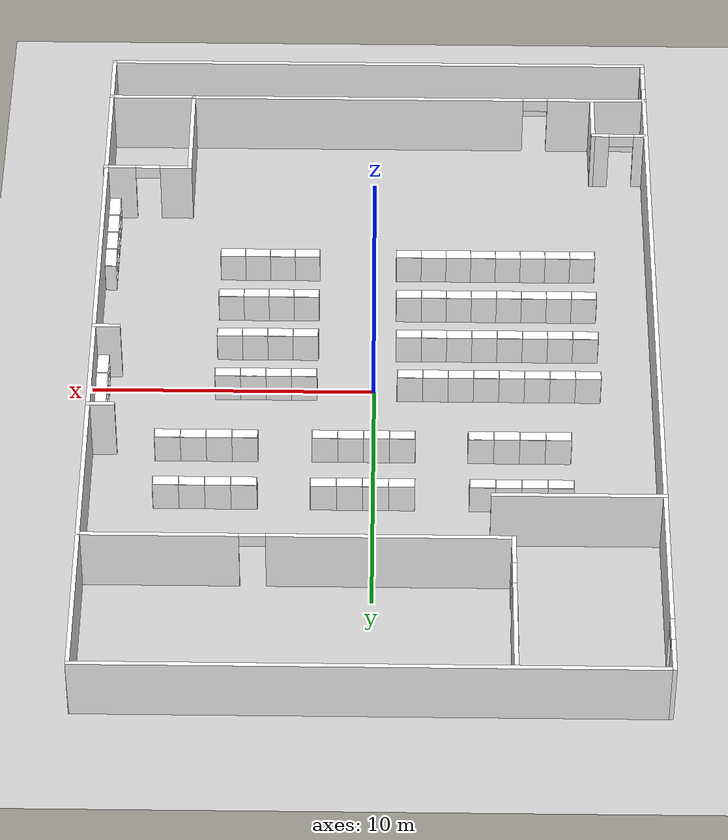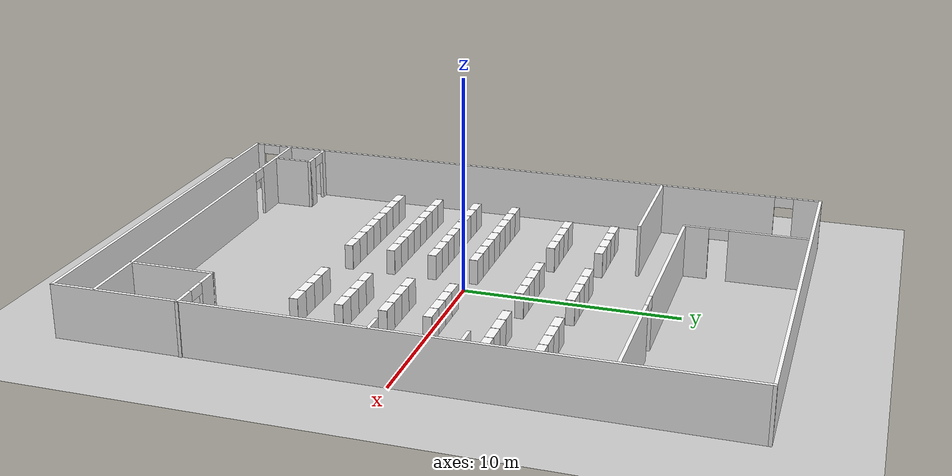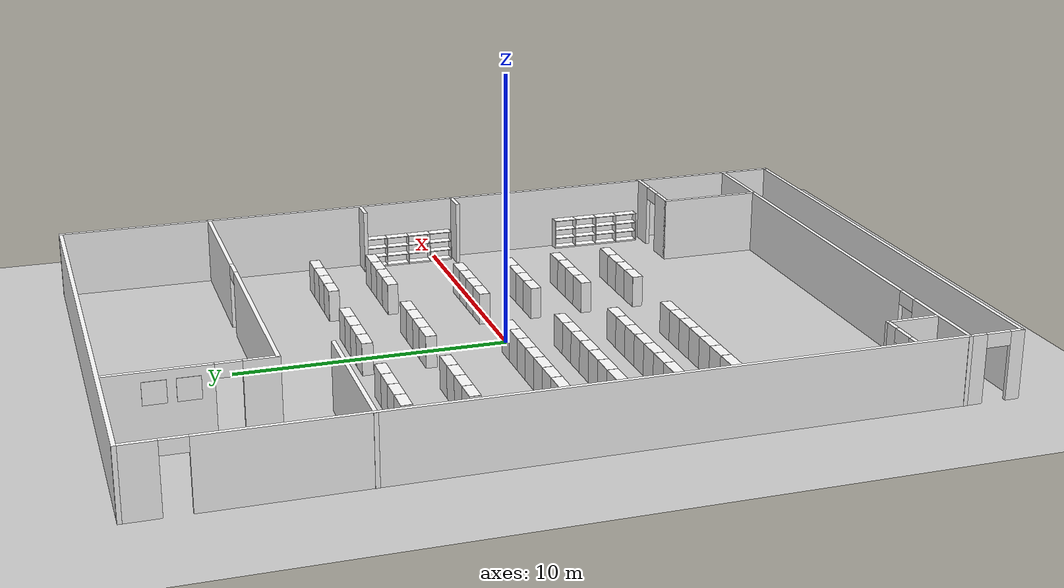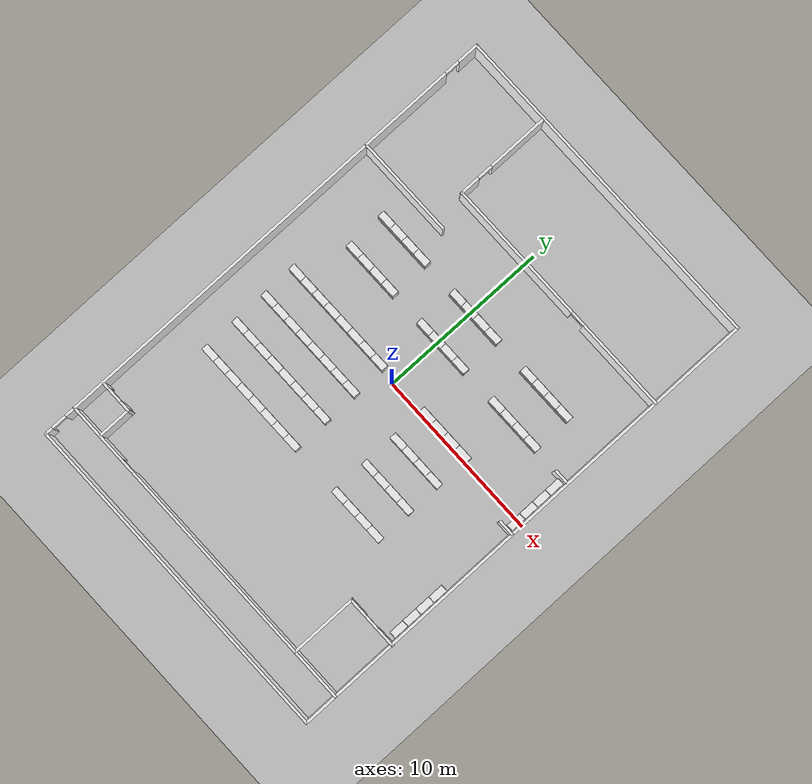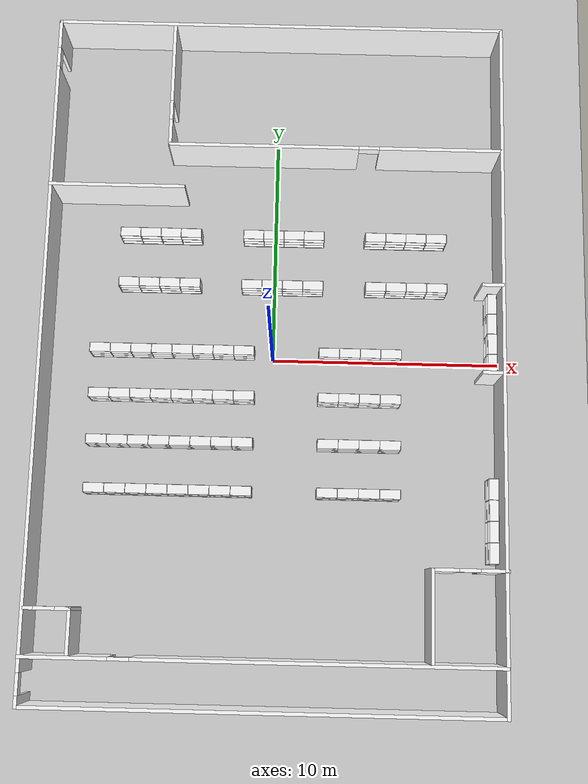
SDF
<sdf version="1.10">
 <world name="test">
  <scene>
   <ambient>1 1 1 1</ambient>
   <background>0.800000012 0.800000012 0.800000012 1</background>
   <shadows>true</shadows>
  </scene>
  <gravity>0 0 -9.8000000000000007</gravity>
  <magnetic_field>5.5644999999999998e-06 2.2875799999999999e-05 -4.2388400000000002e-05</magnetic_field>
  <atmosphere type="adiabatic"/>
  <physics type="ode">
   <max_step_size>0.001</max_step_size>
   <real_time_factor>1</real_time_factor>
   <real_time_update_rate>1000</real_time_update_rate>
  </physics>
  <plugin name="gz::sim::systems::Physics" filename="gz-sim-physics-system"/>
  <plugin name="gz::sim::systems::UserCommands" filename="gz-sim-user-commands-system"/>
  <plugin name="gz::sim::systems::SceneBroadcaster" filename="gz-sim-scene-broadcaster-system"/>
  <plugin name="gz::sim::systems::Sensors" filename="gz-sim-sensors-system">
   <render_engine>ogre2</render_engine>
  </plugin>
  <plugin name="gz::sim::systems::Imu" filename="gz-sim-imu-system"/>
  <include><uri>file:///home/netlab/littletank/model/ground_plane</uri><name>ground_plane</name></include>
  <include>
   <uri>file:///home/netlab/littletank/model/room_1</uri>
   <name>room_1</name>
   <pose>0 -8.8980406376393261e-14 0 0 0 -6.9944050551384862e-15</pose>
  </include>
  <include>
   <uri>file:///home/netlab/littletank/model/parallel_bookshelf</uri>
   <name>parallel_bookshelf</name>
   <pose>-5.1350960731506348 5.7012200355529785 0 0 0 0</pose>
  </include>
  <include>
   <uri>file:///home/netlab/littletank/model/parallel_bookshelf</uri>
   <name>parallel_bookshelf_0</name>
   <pose>0.35470044612884521 5.6946902275085449 0 0 0 0</pose>
  </include>
  <include>
   <uri>file:///home/netlab/littletank/model/parallel_bookshelf</uri>
   <name>parallel_bookshelf_1</name>
   <pose>5.7979617118835449 5.6857600212097168 0 0 0 0</pose>
  </include>
  <include>
   <uri>file:///home/netlab/littletank/model/parallel_bookshelf8</uri>
   <name>parallel_bookshelf8_0</name>
   <pose>-4.4163398742675781 0.40649399161338806 0 0 0 0</pose>
  </include>
  <include>
   <uri>file:///home/netlab/littletank/model/parallel_bookshelf8</uri>
   <name>parallel_bookshelf8</name>
   <pose>-4.3691000938415527 -1.5968270301818848 0 0 0 0</pose>
  </include>
  <include>
   <uri>file:///home/netlab/littletank/model/parallel_bookshelf</uri>
   <name>parallel_bookshelf_4</name>
   <pose>5.8309898376464844 3.415393590927124 0 0 0 0</pose>
  </include>
  <include>
   <uri>file:///home/netlab/littletank/model/parallel_bookshelf</uri>
   <name>parallel_bookshelf_2</name>
   <pose>-5.1029801368713379 3.4118649959564209 0 0 0 0</pose>
  </include>
  <include>
   <uri>file:///home/netlab/littletank/model/parallel_bookshelf</uri>
   <name>parallel_bookshelf_3</name>
   <pose>0.34131801128387451 3.4074697494506836 0 0 0 0</pose>
  </include>
  <include>
   <uri>file:///home/netlab/littletank/model/parallel_bookshelf</uri>
   <name>parallel_bookshelf_5</name>
   <pose>3.8254399299621582 0.38708654046058655 0 0 0 0</pose>
  </include>
  <include>
   <uri>file:///home/netlab/littletank/model/parallel_bookshelf</uri>
   <name>parallel_bookshelf_6</name>
   <pose>3.8127999305725098 -1.6205762624740601 0 0 0 0</pose>
  </include>
  <include>
   <uri>file:///home/netlab/littletank/model/parallel_bookshelf</uri>
   <name>parallel_bookshelf_7</name>
   <pose>9.7981195449829137 1.1983799934387209 0 0 0 -1.5691499864563281</pose>
  </include>
  <include>
   <uri>file:///home/netlab/littletank/model/parallel_bookshelf8</uri>
   <name>parallel_bookshelf8_1</name>
   <pose>-4.3656458854675293 -3.6343700885772705 0 0 0 0</pose>
  </include>
  <include>
   <uri>file:///home/netlab/littletank/model/parallel_bookshelf8</uri>
   <name>parallel_bookshelf8_2</name>
   <pose>-4.359260082244873 -5.7270960807800293 0 0 0 0</pose>
  </include>
  <include>
   <uri>file:///home/netlab/littletank/model/parallel_bookshelf</uri>
   <name>parallel_bookshelf_8</name>
   <pose>3.8221786022186279 -3.6305201053619385 0 0 0 0</pose>
  </include>
  <include>
   <uri>file:///home/netlab/littletank/model/parallel_bookshelf</uri>
   <name>parallel_bookshelf_9</name>
   <pose>3.824993371963501 -5.7282199859619141 0 0 0 0</pose>
  </include>
  <include>
   <uri>file:///home/netlab/littletank/model/parallel_bookshelf</uri>
   <name>parallel_bookshelf_10</name>
   <pose>9.8034896850585938 -6.954826831817627 0 0 0 -1.5723499440971542</pose>
  </include>
  <include>
   <uri>file:///home/netlab/littletank/model/picturebox</uri>
   <name>picturebox</name>
   <pose>-4.8637199401855469 13.190799713134766 1.7760016918182373 0 0 0</pose>
  </include>
  <include>
   <uri>file:///home/netlab/littletank/model/picturebox2</uri>
   <name>picturebox2</name>
   <pose>-4.8631000518798828 12.08141040802002 1.776710033416748 0 0 0</pose>
  </include>
  <light name="sun" type="directional">
   <pose>0 0 10 0 0 0</pose>
   <intensity>1</intensity>
   <direction>-0.5 0.10000000000000001 -0.90000000000000002</direction>
   <diffuse>0.800000012 0.800000012 0.800000012 1</diffuse>
   <specular>0.200000003 0.200000003 0.200000003 1</specular>
   <attenuation>
    <range>1000</range>
    <linear>0.01</linear>
    <constant>0.90000000000000002</constant>
    <quadratic>0.001</quadratic>
   </attenuation>
   <spot><inner_angle>0</inner_angle><outer_angle>0</outer_angle><falloff>0</falloff></spot>
  </light>
 </world>
</sdf>

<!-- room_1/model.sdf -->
<sdf version='1.11'>
  <model name='room_1'>
    <pose>-2.13091 0.288813 0 0 -0 0</pose>
    <link name='Wall_26'>
      <pose>-9.94011 0 0 0 -0 -1.5708</pose>
      <visual name='Wall_26_Visual_0'>
        <pose>-14.3351 0 1.25 0 -0 0</pose>
        <geometry>
          <box>
            <size>1.32984 0.15 2.5</size>
          </box>
        </geometry>
        <material>
          <ambient>1 1 1 1</ambient>
          <diffuse>1 1 1 1</diffuse>
          <specular>0.1 0.1 0.1 1</specular>
          <pbr>
            <metal>
              <albedo_map>/home/netlab/littletank/model/zyz_material/red_wall.png</albedo_map>
            </metal>
          </pbr>
        </material>
        <meta>
          <layer>0</layer>
        </meta>
      </visual>
      <collision name='Wall_26_Collision_0'>
        <geometry>
          <box>
            <size>1.32984 0.15 2.5</size>
          </box>
        </geometry>
        <pose>-14.3351 0 1.25 0 -0 0</pose>
      </collision>
      <visual name='Wall_26_Visual_1'>
        <pose>0.406322 0 1.25 0 -0 0</pose>
        <geometry>
          <box>
            <size>26.353 0.15 2.5</size>
          </box>
        </geometry>
        <material>
          <ambient>1 1 1 1</ambient>
          <diffuse>1 1 1 1</diffuse>
          <specular>0.1 0.1 0.1 1</specular>
          <pbr>
            <metal>
              <albedo_map>/home/netlab/littletank/model/zyz_material/red_wall.png</albedo_map>
            </metal>
          </pbr>
        </material>
        <meta>
          <layer>0</layer>
        </meta>
      </visual>
      <collision name='Wall_26_Collision_1'>
        <geometry>
          <box>
            <size>26.353 0.15 2.5</size>
          </box>
        </geometry>
        <pose>0.406322 0 1.25 0 -0 0</pose>
      </collision>
      <visual name='Wall_26_Visual_2'>
        <pose>14.7414 0 1.25 0 -0 0</pose>
        <geometry>
          <box>
            <size>0.517201 0.15 2.5</size>
          </box>
        </geometry>
        <material>
          <ambient>1 1 1 1</ambient>
          <diffuse>1 1 1 1</diffuse>
          <specular>0.1 0.1 0.1 1</specular>
          <pbr>
            <metal>
              <albedo_map>/home/netlab/littletank/model/zyz_material/red_wall.png</albedo_map>
            </metal>
          </pbr>
        </material>
        <meta>
          <layer>0</layer>
        </meta>
      </visual>
      <collision name='Wall_26_Collision_2'>
        <geometry>
          <box>
            <size>0.517201 0.15 2.5</size>
          </box>
        </geometry>
        <pose>14.7414 0 1.25 0 -0 0</pose>
      </collision>
      <visual name='Wall_26_Visual_3'>
        <pose>-13.2202 0 2.25 0 -0 0</pose>
        <geometry>
          <box>
            <size>0.9 0.15 0.5</size>
          </box>
        </geometry>
        <material>
          <ambient>1 1 1 1</ambient>
          <diffuse>1 1 1 1</diffuse>
          <specular>0.1 0.1 0.1 1</specular>
          <pbr>
            <metal>
              <albedo_map>/home/netlab/littletank/model/zyz_material/red_wall.png</albedo_map>
            </metal>
          </pbr>
        </material>
        <meta>
          <layer>0</layer>
        </meta>
      </visual>
      <collision name='Wall_26_Collision_3'>
        <geometry>
          <box>
            <size>0.9 0.15 0.5</size>
          </box>
        </geometry>
        <pose>-13.2202 0 2.25 0 -0 0</pose>
      </collision>
      <visual name='Wall_26_Visual_4'>
        <pose>14.0328 0 2.25 0 -0 0</pose>
        <geometry>
          <box>
            <size>0.9 0.15 0.5</size>
          </box>
        </geometry>
        <material>
          <ambient>1 1 1 1</ambient>
          <diffuse>1 1 1 1</diffuse>
          <specular>0.1 0.1 0.1 1</specular>
          <pbr>
            <metal>
              <albedo_map>/home/netlab/littletank/model/zyz_material/red_wall.png</albedo_map>
            </metal>
          </pbr>
        </material>
        <meta>
          <layer>0</layer>
        </meta>
      </visual>
      <collision name='Wall_26_Collision_4'>
        <geometry>
          <box>
            <size>0.9 0.15 0.5</size>
          </box>
        </geometry>
        <pose>14.0328 0 2.25 0 -0 0</pose>
      </collision>
    </link>
    <link name='Wall_28'>
      <collision name='Wall_28_Collision'>
        <geometry>
          <box>
            <size>20 0.15 2.5</size>
          </box>
        </geometry>
        <pose>0 0 1.25 0 -0 0</pose>
      </collision>
      <visual name='Wall_28_Visual'>
        <pose>0 0 1.25 0 -0 0</pose>
        <geometry>
          <box>
            <size>20 0.15 2.5</size>
          </box>
        </geometry>
        <material>
          <ambient>1 1 1 1</ambient>
          <diffuse>1 1 1 1</diffuse>
          <specular>0.1 0.1 0.1 1</specular>
          <pbr>
            <metal>
              <albedo_map>/home/netlab/littletank/model/zyz_material/red_wall.png</albedo_map>
            </metal>
          </pbr>
        </material>
        <meta>
          <layer>0</layer>
        </meta>
      </visual>
      <pose>-0.015112 -14.925 0 0 -0 0</pose>
    </link>
    <link name='Wall_30'>
      <collision name='Wall_30_Collision'>
        <geometry>
          <box>
            <size>20 0.15 2.5</size>
          </box>
        </geometry>
        <pose>0 0 1.25 0 -0 0</pose>
      </collision>
      <visual name='Wall_30_Visual'>
        <pose>0 0 1.25 0 -0 0</pose>
        <geometry>
          <box>
            <size>20 0.15 2.5</size>
          </box>
        </geometry>
        <material>
          <ambient>1 1 1 1</ambient>
          <diffuse>1 1 1 1</diffuse>
          <specular>0.1 0.1 0.1 1</specular>
          <pbr>
            <metal>
              <albedo_map>/home/netlab/littletank/model/zyz_material/red_wall.png</albedo_map>
            </metal>
          </pbr>
        </material>
        <meta>
          <layer>0</layer>
        </meta>
      </visual>
      <pose>-0.015112 14.925 0 0 -0 0</pose>
    </link>
    <link name='Wall_32'>
      <collision name='Wall_32_Collision'>
        <geometry>
          <box>
            <size>30 0.15 2.5</size>
          </box>
        </geometry>
        <pose>0 0 1.25 0 -0 0</pose>
      </collision>
      <visual name='Wall_32_Visual'>
        <pose>0 0 1.25 0 -0 0</pose>
        <geometry>
          <box>
            <size>30 0.15 2.5</size>
          </box>
        </geometry>
        <material>
          <ambient>1 1 1 1</ambient>
          <diffuse>1 1 1 1</diffuse>
          <specular>0.1 0.1 0.1 1</specular>
          <pbr>
            <metal>
              <albedo_map>/home/netlab/littletank/model/zyz_material/red_wall.png</albedo_map>
            </metal>
          </pbr>
        </material>
        <meta>
          <layer>0</layer>
        </meta>
      </visual>
      <pose>9.90989 0 0 0 -0 1.5708</pose>
    </link>
    <link name='Wall_34'>
      <pose>2.56186 9.19197 0 0 -0 3.14159</pose>
      <visual name='Wall_34_Visual_0'>
        <pose>-4.65024 0 1.25 0 -0 0</pose>
        <geometry>
          <box>
            <size>5.44952 0.15 2.5</size>
          </box>
        </geometry>
        <material>
          <ambient>1 1 1 1</ambient>
          <diffuse>1 1 1 1</diffuse>
          <specular>0.1 0.1 0.1 1</specular>
          <pbr>
            <metal>
              <albedo_map>/home/netlab/littletank/model/zyz_material/red_wall.png</albedo_map>
            </metal>
          </pbr>
        </material>
        <meta>
          <layer>0</layer>
        </meta>
      </visual>
      <collision name='Wall_34_Collision_0'>
        <geometry>
          <box>
            <size>5.44952 0.15 2.5</size>
          </box>
        </geometry>
        <pose>-4.65024 0 1.25 0 -0 0</pose>
      </collision>
      <visual name='Wall_34_Visual_1'>
        <pose>3.17476 0 1.25 0 -0 0</pose>
        <geometry>
          <box>
            <size>8.40048 0.15 2.5</size>
          </box>
        </geometry>
        <material>
          <ambient>1 1 1 1</ambient>
          <diffuse>1 1 1 1</diffuse>
          <specular>0.1 0.1 0.1 1</specular>
          <pbr>
            <metal>
              <albedo_map>/home/netlab/littletank/model/zyz_material/red_wall.png</albedo_map>
            </metal>
          </pbr>
        </material>
        <meta>
          <layer>0</layer>
        </meta>
      </visual>
      <collision name='Wall_34_Collision_1'>
        <geometry>
          <box>
            <size>8.40048 0.15 2.5</size>
          </box>
        </geometry>
        <pose>3.17476 0 1.25 0 -0 0</pose>
      </collision>
      <visual name='Wall_34_Visual_2'>
        <pose>-1.47548 0 2.25 0 -0 0</pose>
        <geometry>
          <box>
            <size>0.9 0.15 0.5</size>
          </box>
        </geometry>
        <material>
          <ambient>1 1 1 1</ambient>
          <diffuse>1 1 1 1</diffuse>
          <specular>0.1 0.1 0.1 1</specular>
          <pbr>
            <metal>
              <albedo_map>/home/netlab/littletank/model/zyz_material/red_wall.png</albedo_map>
            </metal>
          </pbr>
        </material>
        <meta>
          <layer>0</layer>
        </meta>
      </visual>
      <collision name='Wall_34_Collision_2'>
        <geometry>
          <box>
            <size>0.9 0.15 0.5</size>
          </box>
        </geometry>
        <pose>-1.47548 0 2.25 0 -0 0</pose>
      </collision>
    </link>
    <link name='Wall_36'>
      <pose>-4.77332 11.992 0 0 -0 1.5708</pose>
      <visual name='Wall_36_Visual_0'>
        <pose>-2.26207 0 1.25 0 -0 0</pose>
        <geometry>
          <box>
            <size>1.22585 0.15 2.5</size>
          </box>
        </geometry>
        <material>
          <ambient>1 1 1 1</ambient>
          <diffuse>1 1 1 1</diffuse>
          <specular>0.1 0.1 0.1 1</specular>
          <pbr>
            <metal>
              <albedo_map>/home/netlab/littletank/model/zyz_material/red_wall.png</albedo_map>
            </metal>
          </pbr>
        </material>
        <meta>
          <layer>0</layer>
        </meta>
      </visual>
      <collision name='Wall_36_Collision_0'>
        <geometry>
          <box>
            <size>1.22585 0.15 2.5</size>
          </box>
        </geometry>
        <pose>-2.26207 0 1.25 0 -0 0</pose>
      </collision>
      <visual name='Wall_36_Visual_1'>
        <pose>1.06292 0 1.25 0 -0 0</pose>
        <geometry>
          <box>
            <size>3.62415 0.15 2.5</size>
          </box>
        </geometry>
        <material>
          <ambient>1 1 1 1</ambient>
          <diffuse>1 1 1 1</diffuse>
          <specular>0.1 0.1 0.1 1</specular>
          <pbr>
            <metal>
              <albedo_map>/home/netlab/littletank/model/zyz_material/red_wall.png</albedo_map>
            </metal>
          </pbr>
        </material>
        <meta>
          <layer>0</layer>
        </meta>
      </visual>
      <collision name='Wall_36_Collision_1'>
        <geometry>
          <box>
            <size>3.62415 0.15 2.5</size>
          </box>
        </geometry>
        <pose>1.06292 0 1.25 0 -0 0</pose>
      </collision>
      <visual name='Wall_36_Visual_2'>
        <pose>-1.19915 0 2.25 0 -0 0</pose>
        <geometry>
          <box>
            <size>0.9 0.15 0.5</size>
          </box>
        </geometry>
        <material>
          <ambient>1 1 1 1</ambient>
          <diffuse>1 1 1 1</diffuse>
          <specular>0.1 0.1 0.1 1</specular>
          <pbr>
            <metal>
              <albedo_map>/home/netlab/littletank/model/zyz_material/red_wall.png</albedo_map>
            </metal>
          </pbr>
        </material>
        <meta>
          <layer>0</layer>
        </meta>
      </visual>
      <collision name='Wall_36_Collision_2'>
        <geometry>
          <box>
            <size>0.9 0.15 0.5</size>
          </box>
        </geometry>
        <pose>-1.19915 0 2.25 0 -0 0</pose>
      </collision>
    </link>
    <link name='Wall_38'>
      <collision name='Wall_38_Collision'>
        <geometry>
          <box>
            <size>2 0.15 2.5</size>
          </box>
        </geometry>
        <pose>0 0 1.25 0 -0 0</pose>
      </collision>
      <visual name='Wall_38_Visual'>
        <pose>0 0 1.25 0 -0 0</pose>
        <geometry>
          <box>
            <size>2 0.15 2.5</size>
          </box>
        </geometry>
        <material>
          <ambient>1 1 1 1</ambient>
          <diffuse>1 1 1 1</diffuse>
          <specular>0.1 0.1 0.1 1</specular>
          <pbr>
            <metal>
              <albedo_map>/home/netlab/littletank/model/zyz_material/grey_wall.png</albedo_map>
            </metal>
          </pbr>
        </material>
        <meta>
          <layer>0</layer>
        </meta>
      </visual>
      <pose>-7.99563 -11.9358 0 0 -0 1.5708</pose>
    </link>
    <link name='Wall_40'>
      <pose>-0.031192 -12.9552 0 0 -0 0</pose>
      <visual name='Wall_40_Visual_0'>
        <pose>-8.15511 0 1.25 0 -0 0</pose>
        <geometry>
          <box>
            <size>3.68977 0.15 2.5</size>
          </box>
        </geometry>
        <material>
          <ambient>1 1 1 1</ambient>
          <diffuse>1 1 1 1</diffuse>
          <specular>0.1 0.1 0.1 1</specular>
          <pbr>
            <metal>
              <albedo_map>/home/netlab/littletank/model/zyz_material/red_wall.png</albedo_map>
            </metal>
          </pbr>
        </material>
        <meta>
          <layer>0</layer>
        </meta>
      </visual>
      <collision name='Wall_40_Collision_0'>
        <geometry>
          <box>
            <size>3.68977 0.15 2.5</size>
          </box>
        </geometry>
        <pose>-8.15511 0 1.25 0 -0 0</pose>
      </collision>
      <visual name='Wall_40_Visual_1'>
        <pose>2.29489 0 1.25 0 -0 0</pose>
        <geometry>
          <box>
            <size>15.4102 0.15 2.5</size>
          </box>
        </geometry>
        <material>
          <ambient>1 1 1 1</ambient>
          <diffuse>1 1 1 1</diffuse>
          <specular>0.1 0.1 0.1 1</specular>
          <pbr>
            <metal>
              <albedo_map>/home/netlab/littletank/model/zyz_material/red_wall.png</albedo_map>
            </metal>
          </pbr>
        </material>
        <meta>
          <layer>0</layer>
        </meta>
      </visual>
      <collision name='Wall_40_Collision_1'>
        <geometry>
          <box>
            <size>15.4102 0.15 2.5</size>
          </box>
        </geometry>
        <pose>2.29489 0 1.25 0 -0 0</pose>
      </collision>
      <visual name='Wall_40_Visual_2'>
        <pose>-5.86023 0 2.25 0 -0 0</pose>
        <geometry>
          <box>
            <size>0.9 0.15 0.5</size>
          </box>
        </geometry>
        <material>
          <ambient>1 1 1 1</ambient>
          <diffuse>1 1 1 1</diffuse>
          <specular>0.1 0.1 0.1 1</specular>
          <pbr>
            <metal>
              <albedo_map>/home/netlab/littletank/model/zyz_material/red_wall.png</albedo_map>
            </metal>
          </pbr>
        </material>
        <meta>
          <layer>0</layer>
        </meta>
      </visual>
      <collision name='Wall_40_Collision_2'>
        <geometry>
          <box>
            <size>0.9 0.15 0.5</size>
          </box>
        </geometry>
        <pose>-5.86023 0 2.25 0 -0 0</pose>
      </collision>
    </link>
    <link name='Wall_42'>
      <pose>-8.92063 -11.0108 0 0 -0 3.14159</pose>
      <visual name='Wall_42_Visual_0'>
        <pose>-0.665755 0 1.25 0 -0 0</pose>
        <geometry>
          <box>
            <size>0.668489 0.15 2.5</size>
          </box>
        </geometry>
        <material>
          <ambient>1 1 1 1</ambient>
          <diffuse>1 1 1 1</diffuse>
          <specular>0.1 0.1 0.1 1</specular>
          <pbr>
            <metal>
              <albedo_map>/home/netlab/littletank/model/zyz_material/grey_wall.png</albedo_map>
            </metal>
          </pbr>
        </material>
        <meta>
          <layer>0</layer>
        </meta>
      </visual>
      <collision name='Wall_42_Collision_0'>
        <geometry>
          <box>
            <size>0.668489 0.15 2.5</size>
          </box>
        </geometry>
        <pose>-0.665755 0 1.25 0 -0 0</pose>
      </collision>
      <visual name='Wall_42_Visual_1'>
        <pose>0.784245 0 1.25 0 -0 0</pose>
        <geometry>
          <box>
            <size>0.431511 0.15 2.5</size>
          </box>
        </geometry>
        <material>
          <ambient>1 1 1 1</ambient>
          <diffuse>1 1 1 1</diffuse>
          <specular>0.1 0.1 0.1 1</specular>
          <pbr>
            <metal>
              <albedo_map>/home/netlab/littletank/model/zyz_material/grey_wall.png</albedo_map>
            </metal>
          </pbr>
        </material>
        <meta>
          <layer>0</layer>
        </meta>
      </visual>
      <collision name='Wall_42_Collision_1'>
        <geometry>
          <box>
            <size>0.431511 0.15 2.5</size>
          </box>
        </geometry>
        <pose>0.784245 0 1.25 0 -0 0</pose>
      </collision>
      <visual name='Wall_42_Visual_2'>
        <pose>0.118489 0 2.25 0 -0 0</pose>
        <geometry>
          <box>
            <size>0.9 0.15 0.5</size>
          </box>
        </geometry>
        <material>
          <ambient>1 1 1 1</ambient>
          <diffuse>1 1 1 1</diffuse>
          <specular>0.1 0.1 0.1 1</specular>
          <pbr>
            <metal>
              <albedo_map>/home/netlab/littletank/model/zyz_material/grey_wall.png</albedo_map>
            </metal>
          </pbr>
        </material>
        <meta>
          <layer>0</layer>
        </meta>
      </visual>
      <collision name='Wall_42_Collision_2'>
        <geometry>
          <box>
            <size>0.9 0.15 0.5</size>
          </box>
        </geometry>
        <pose>0.118489 0 2.25 0 -0 0</pose>
      </collision>
    </link>
    <link name='Wall_46'>
      <collision name='Wall_46_Collision'>
        <geometry>
          <box>
            <size>4 0.15 2.5</size>
          </box>
        </geometry>
        <pose>0 0 1.25 0 -0 0</pose>
      </collision>
      <visual name='Wall_46_Visual'>
        <pose>0 0 1.25 0 -0 0</pose>
        <geometry>
          <box>
            <size>4 0.15 2.5</size>
          </box>
        </geometry>
        <material>
          <ambient>1 1 1 1</ambient>
          <diffuse>1 1 1 1</diffuse>
          <specular>0.1 0.1 0.1 1</specular>
          <pbr>
            <metal>
              <albedo_map>/home/netlab/littletank/model/zyz_material/brick_wall.png</albedo_map>
            </metal>
          </pbr>
        </material>
        <meta>
          <layer>0</layer>
        </meta>
      </visual>
      <pose>6.85619 -11.0034 0 0 -0 1.5708</pose>
    </link>
    <link name='Wall_48'>
      <collision name='Wall_48_Collision'>
        <geometry>
          <box>
            <size>1 0.15 2.5</size>
          </box>
        </geometry>
        <pose>0 0 1.25 0 -0 0</pose>
      </collision>
      <visual name='Wall_48_Visual'>
        <pose>0 0 1.25 0 -0 0</pose>
        <geometry>
          <box>
            <size>1 0.15 2.5</size>
          </box>
        </geometry>
        <material>
          <ambient>1 1 1 1</ambient>
          <diffuse>1 1 1 1</diffuse>
          <specular>0.1 0.1 0.1 1</specular>
          <pbr>
            <metal>
              <albedo_map>/home/netlab/littletank/model/zyz_material/grey_wall.png</albedo_map>
            </metal>
          </pbr>
        </material>
        <meta>
          <layer>0</layer>
        </meta>
      </visual>
      <pose>9.48123 3.07607 0 0 -0 3.14159</pose>
    </link>
    <link name='Wall_52'>
      <collision name='Wall_52_Collision'>
        <geometry>
          <box>
            <size>1 0.15 2.5</size>
          </box>
        </geometry>
        <pose>0 0 1.25 0 -0 0</pose>
      </collision>
      <visual name='Wall_52_Visual'>
        <pose>0 0 1.25 0 -0 0</pose>
        <geometry>
          <box>
            <size>1 0.15 2.5</size>
          </box>
        </geometry>
        <material>
          <ambient>1 1 1 1</ambient>
          <diffuse>1 1 1 1</diffuse>
          <specular>0.1 0.1 0.1 1</specular>
          <pbr>
            <metal>
              <albedo_map>/home/netlab/littletank/model/zyz_material/grey_wall.png</albedo_map>
            </metal>
          </pbr>
        </material>
        <meta>
          <layer>0</layer>
        </meta>
      </visual>
      <pose>9.48123 -0.773925 0 0 -0 0</pose>
    </link>
    <link name='Wall_54'>
      <pose>8.40619 -9.0784 0 0 -0 0</pose>
      <visual name='Wall_54_Visual_0'>
        <pose>-1.04502 0 1.25 0 -0 0</pose>
        <geometry>
          <box>
            <size>1.15997 0.15 2.5</size>
          </box>
        </geometry>
        <material>
          <ambient>1 1 1 1</ambient>
          <diffuse>1 1 1 1</diffuse>
          <specular>0.1 0.1 0.1 1</specular>
          <pbr>
            <metal>
              <albedo_map>/home/netlab/littletank/model/zyz_material/brick_wall.png</albedo_map>
            </metal>
          </pbr>
        </material>
        <meta>
          <layer>0</layer>
        </meta>
      </visual>
      <collision name='Wall_54_Collision_0'>
        <geometry>
          <box>
            <size>1.15997 0.15 2.5</size>
          </box>
        </geometry>
        <pose>-1.04502 0 1.25 0 -0 0</pose>
      </collision>
      <visual name='Wall_54_Visual_1'>
        <pose>1.02998 0 1.25 0 -0 0</pose>
        <geometry>
          <box>
            <size>1.19003 0.15 2.5</size>
          </box>
        </geometry>
        <material>
          <ambient>1 1 1 1</ambient>
          <diffuse>1 1 1 1</diffuse>
          <specular>0.1 0.1 0.1 1</specular>
          <pbr>
            <metal>
              <albedo_map>/home/netlab/littletank/model/zyz_material/brick_wall.png</albedo_map>
            </metal>
          </pbr>
        </material>
        <meta>
          <layer>0</layer>
        </meta>
      </visual>
      <collision name='Wall_54_Collision_1'>
        <geometry>
          <box>
            <size>1.19003 0.15 2.5</size>
          </box>
        </geometry>
        <pose>1.02998 0 1.25 0 -0 0</pose>
      </collision>
      <visual name='Wall_54_Visual_2'>
        <pose>-0.015034 0 2.25 0 -0 0</pose>
        <geometry>
          <box>
            <size>0.9 0.15 0.5</size>
          </box>
        </geometry>
        <material>
          <ambient>1 1 1 1</ambient>
          <diffuse>1 1 1 1</diffuse>
          <specular>0.1 0.1 0.1 1</specular>
          <pbr>
            <metal>
              <albedo_map>/home/netlab/littletank/model/zyz_material/brick_wall.png</albedo_map>
            </metal>
          </pbr>
        </material>
        <meta>
          <layer>0</layer>
        </meta>
      </visual>
      <collision name='Wall_54_Collision_2'>
        <geometry>
          <box>
            <size>0.9 0.15 0.5</size>
          </box>
        </geometry>
        <pose>-0.015034 0 2.25 0 -0 0</pose>
      </collision>
    </link>
    <link name='Wall_56'>
      <collision name='Wall_56_Collision'>
        <geometry>
          <box>
            <size>6 0.15 2.5</size>
          </box>
        </geometry>
        <pose>0 0 1.25 0 -0 0</pose>
      </collision>
      <visual name='Wall_56_Visual'>
        <pose>0 0 1.25 0 -0 0</pose>
        <geometry>
          <box>
            <size>6 0.15 2.5</size>
          </box>
        </geometry>
        <material>
          <ambient>1 1 1 1</ambient>
          <diffuse>1 1 1 1</diffuse>
          <specular>0.1 0.1 0.1 1</specular>
          <pbr>
            <metal>
              <albedo_map>/home/netlab/littletank/model/zyz_material/orange_wall.png</albedo_map>
            </metal>
          </pbr>
        </material>
        <meta>
          <layer>0</layer>
        </meta>
      </visual>
      <pose>-7.02897 7.22513 0 0 -0 0</pose>
    </link>
    <static>1</static>
  </model>
</sdf>

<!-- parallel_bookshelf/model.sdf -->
<sdf version="1.10">
  <model name="parallel_bookshelf">
    <static>true</static>

    <!-- First Bookshelf -->
    <include>
      <uri>model://Bookshelf</uri>
      <name>bookshelf_1</name>
      <pose>-1.35 0 0 0 0 0</pose>
    </include>

    <!-- Second Bookshelf -->
    <include>
      <uri>model://Bookshelf</uri>
      <name>bookshelf_2</name>
      <pose>-0.45 0 0 0 0 0</pose>
    </include>

    <!-- Third Bookshelf -->
    <include>
      <uri>model://Bookshelf</uri>
      <name>bookshelf_3</name>
      <pose>0.45 0 0 0 0 0</pose>
    </include>

    <!-- Fourth Bookshelf -->
    <include>
      <uri>model://Bookshelf</uri>
      <name>bookshelf_4</name>
      <pose>1.35 0 0 0 0 0</pose>
    </include>

  </model>
</sdf>

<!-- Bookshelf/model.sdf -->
<sdf version="1.10">
  <model name="Bookshelf">
    <static>true</static>
    <link name="link">
      <inertial>
        <mass>1.0</mass>
      </inertial>
      <collision name="back">
        <pose>0 0.005 0.6 0 0 0</pose>
        <geometry>
          <box>
            <size>0.9 0.01 1.2</size>
          </box>
        </geometry>
      </collision>
      <visual name="visual1">
        <pose>0 0.005 0.6 0 0 0</pose>
        <geometry>
          <box>
            <size>0.9 0.01 1.2</size>
          </box>
        </geometry>
        <material>
          <ambient>1 1 1 1</ambient>
          <diffuse>1 1 1 1</diffuse>
          <specular>0.1 0.1 0.1 1</specular>
          <pbr>
            <metal>
              <albedo_map>/home/netlab/littletank/model/zyz_material/bookshelf_diffuse.jpg</albedo_map>
            </metal>
          </pbr>
        </material>
      </visual>
      <collision name="left_side">
        <pose>0.45 -0.195 0.6 0 0 0</pose>
        <geometry>
          <box>
            <size>0.02 0.4 1.2</size>
          </box>
        </geometry>
      </collision>
      <visual name="visual2">
        <pose>0.45 -0.195 0.6 0 0 0</pose>
        <geometry>
          <box>
            <size>0.02 0.4 1.2</size>
          </box>
        </geometry>
        <material>
          <ambient>1 1 1 1</ambient>
          <diffuse>1 1 1 1</diffuse>
          <specular>0.1 0.1 0.1 1</specular>
          <pbr>
            <metal>
              <albedo_map>/home/netlab/littletank/model/zyz_material/bookshelf_diffuse.jpg</albedo_map>
            </metal>
          </pbr>
        </material>
      </visual>
      <collision name="right_side">
        <pose>-0.45 -0.195 0.6 0 0 0</pose>
        <geometry>
          <box>
            <size>0.02 0.4 1.2</size>
          </box>
        </geometry>
      </collision>
      <visual name="visual3">
        <pose>-0.45 -0.195 0.6 0 0 0</pose>
        <geometry>
          <box>
            <size>0.02 0.4 1.2</size>
          </box>
        </geometry>
        <material>
          <ambient>1 1 1 1</ambient>
          <diffuse>1 1 1 1</diffuse>
          <specular>0.1 0.1 0.1 1</specular>
          <pbr>
            <metal>
              <albedo_map>/home/netlab/littletank/model/zyz_material/bookshelf_diffuse.jpg</albedo_map>
            </metal>
          </pbr>
        </material>
      </visual>
      <collision name="bottom">
        <pose>0 -0.195 0.03 0 0 0</pose>
        <geometry>
          <box>
            <size>0.88 0.4 0.06</size>
          </box>
        </geometry>
      </collision>
      <visual name="visual4">
        <pose>0 -0.195 0.03 0 0 0</pose>
        <geometry>
          <box>
            <size>0.88 0.4 0.06</size>
          </box>
        </geometry>
        <material>
          <ambient>1 1 1 1</ambient>
          <diffuse>1 1 1 1</diffuse>
          <specular>0.1 0.1 0.1 1</specular>
          <pbr>
            <metal>
              <albedo_map>/home/netlab/littletank/model/zyz_material/bookshelf_diffuse.jpg</albedo_map>
            </metal>
          </pbr>
        </material>
      </visual>
      <collision name="top">
        <pose>0 -0.195 1.19 0 0 0</pose>
        <geometry>
          <box>
            <size>0.88 0.4 0.02</size>
          </box>
        </geometry>
      </collision>
      <visual name="visual5">
        <pose>0 -0.195 1.19 0 0 0</pose>
        <geometry>
          <box>
            <size>0.88 0.4 0.02</size>
          </box>
        </geometry>
        <material>
          <ambient>1 1 1 1</ambient>
          <diffuse>1 1 1 1</diffuse>
          <specular>0.1 0.1 0.1 1</specular>
          <pbr>
            <metal>
              <albedo_map>/home/netlab/littletank/model/zyz_material/bookshelf_diffuse.jpg</albedo_map>
            </metal>
          </pbr>
        </material>
      </visual>
      <collision name="low_shelf">
        <pose>0 -0.195 0.43 0 0 0</pose>
        <geometry>
          <box>
            <size>0.88 0.4 0.02</size>
          </box>
        </geometry>
      </collision>
      <visual name="visual6">
        <pose>0 -0.195 0.43 0 0 0</pose>
        <geometry>
          <box>
            <size>0.88 0.4 0.02</size>
          </box>
        </geometry>
        <material>
          <ambient>1 1 1 1</ambient>
          <diffuse>1 1 1 1</diffuse>
          <specular>0.1 0.1 0.1 1</specular>
          <pbr>
            <metal>
              <albedo_map>/home/netlab/littletank/model/zyz_material/bookshelf_diffuse.jpg</albedo_map>
            </metal>
          </pbr>
        </material>
      </visual>
      <collision name="high_shelf">
        <pose>0 -0.195 0.8 0 0 0</pose>
        <geometry>
          <box>
            <size>0.88 0.4 0.02</size>
          </box>
        </geometry>
      </collision>
      <visual name="visual7">
        <pose>0 -0.195 0.8 0 0 0</pose>
        <geometry>
          <box>
            <size>0.88 0.4 0.02</size>
          </box>
        </geometry>
        <material>
          <ambient>1 1 1 1</ambient>
          <diffuse>1 1 1 1</diffuse>
          <specular>0.1 0.1 0.1 1</specular>
          <pbr>
            <metal>
              <albedo_map>/home/netlab/littletank/model/zyz_material/bookshelf_diffuse.jpg</albedo_map>
            </metal>
          </pbr>
        </material>
      </visual>
    </link>
  </model>
</sdf>

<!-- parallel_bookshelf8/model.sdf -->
<sdf version="1.10">
  <model name="parallel_bookshelf8">
    <static>true</static>

    <!-- First Bookshelf -->
    <include>
      <uri>model://Bookshelf</uri>
      <name>bookshelf_1</name>
      <pose>-3.15 0 0 0 0 0</pose>
    </include>

    <!-- Second Bookshelf -->
    <include>
      <uri>model://Bookshelf</uri>
      <name>bookshelf_2</name>
      <pose>-2.25 0 0 0 0 0</pose>
    </include>

    <!-- Third Bookshelf -->
    <include>
      <uri>model://Bookshelf</uri>
      <name>bookshelf_3</name>
      <pose>-1.35 0 0 0 0 0</pose>
    </include>

    <!-- Fourth Bookshelf -->
    <include>
      <uri>model://Bookshelf</uri>
      <name>bookshelf_4</name>
      <pose>-0.45 0 0 0 0 0</pose>
    </include>

    <!-- Fifth Bookshelf -->
    <include>
      <uri>model://Bookshelf</uri>
      <name>bookshelf_5</name>
      <pose>0.45 0 0 0 0 0</pose>
    </include>

    <!-- Sixth Bookshelf -->
    <include>
      <uri>model://Bookshelf</uri>
      <name>bookshelf_6</name>
      <pose>1.35 0 0 0 0 0</pose>
    </include>

    <!-- Seventh Bookshelf -->
    <include>
      <uri>model://Bookshelf</uri>
      <name>bookshelf_7</name>
      <pose>2.25 0 0 0 0 0</pose>
    </include>

    <!-- Eighth Bookshelf -->
    <include>
      <uri>model://Bookshelf</uri>
      <name>bookshelf_8</name>
      <pose>3.15 0 0 0 0 0</pose>
    </include>

  </model>
</sdf>

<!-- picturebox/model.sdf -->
<sdf version='1.10'>
    <model name="picturebox">
        <pose> 0 0 0.5 0 0 0</pose>
        <static> true </static>
        <link name="picturebox_link">
            <collision name="picturebox_collision">
                <geometry>
                    <box>
                        <size>0.02 0.8 0.8</size>
                    </box>
                </geometry>
            </collision>

            <visual name="picturebox_visual">
                <geometry>
                    <box>
                        <size>0.02 0.8 0.8</size>
                    </box>
                </geometry>
                <material>
                <ambient>1 1 1 1</ambient>
                <diffuse>1 1 1 1</diffuse>
                <specular>0.1 0.1 0.1 1</specular>
                <pbr>
                    <metal>
                    <albedo_map>/home/netlab/littletank/model/zyz_material/picturebox.png</albedo_map>
                    </metal>
                </pbr>
                </material>
            </visual>
        </link>
    </model>
</sdf>

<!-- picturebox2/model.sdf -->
<sdf version='1.10'>
    <model name="picturebox2">
        <pose> 0 0 0.5 0 0 0</pose>
        <static> true </static>
        <link name="picturebox2_link">
            <collision name="picturebox2_collision">
                <geometry>
                    <box>
                        <size>0.02 0.8 0.8</size>
                    </box>
                </geometry>
            </collision>

            <visual name="picturebox2_visual">
                <geometry>
                    <box>
                        <size>0.02 0.8 0.8</size>
                    </box>
                </geometry>
                <material>
                <ambient>1 1 1 1</ambient>
                <diffuse>1 1 1 1</diffuse>
                <specular>0.1 0.1 0.1 1</specular>
                <pbr>
                    <metal>
                    <albedo_map>/home/netlab/littletank/model/zyz_material/picturebox2.png</albedo_map>
                    </metal>
                </pbr>
                </material>
            </visual>
        </link>
    </model>
</sdf>
